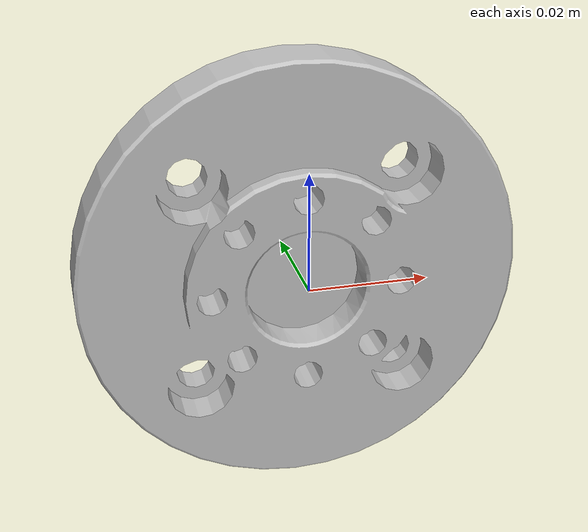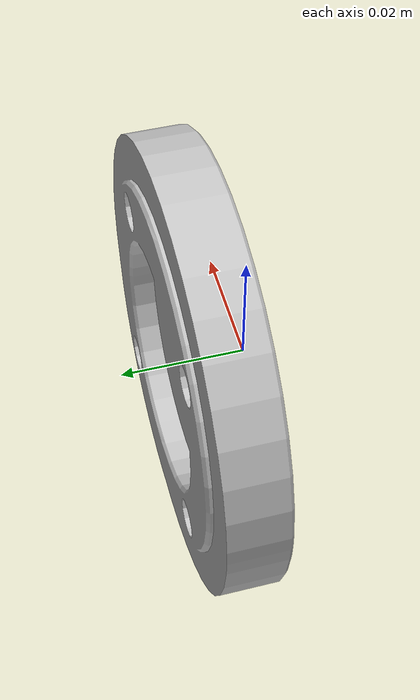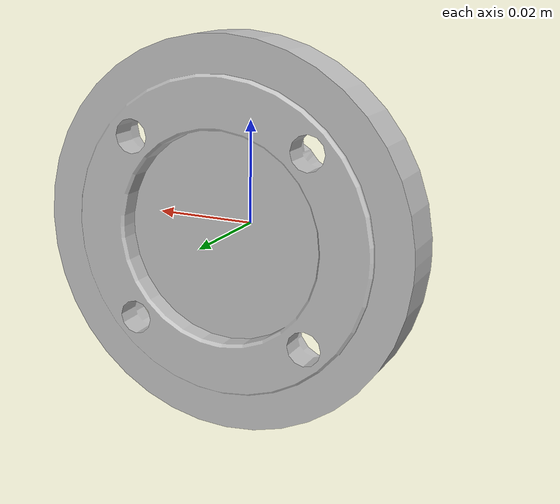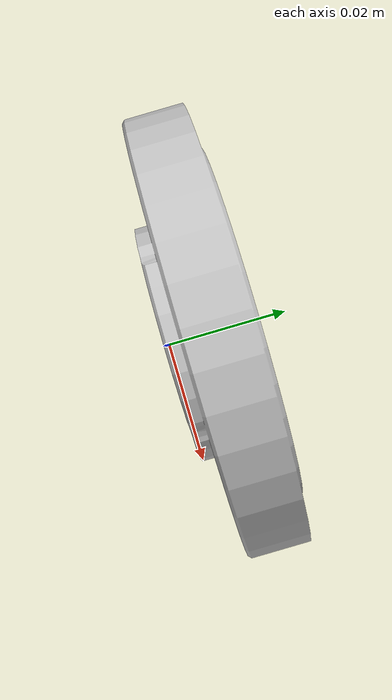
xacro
<?xml version="1.0" encoding="utf-8"?>
<robot
  name="ee"
  xmlns:xacro="http://www.ros.org/wiki/xacro">
  <link
    name="link_coupling3">
    <inertial>
      <origin
        xyz="-2.13510948500582E-07 -1.82970595220083E-06 -0.00768363431196126"
        rpy="0 0 0" />
      <mass
        value="0.0384214421870518" />
      <inertia
        ixx="1.44308944749129E-05"
        ixy="1.10001208358471E-10"
        ixz="6.16955726898917E-11"
        iyy="1.44318430502768E-05"
        iyz="5.28407477246946E-10"
        izz="2.80517055222733E-05" />
    </inertial>
    <visual>
      <origin
        xyz="0 0 0"
        rpy="0 0 0" />
      <geometry>
        <mesh
          filename="package://system_urdf/meshes/roller_probe_pieces/coupling3.STL" />
      </geometry>
      <material
        name="">
        <color
          rgba="0.749019607843137 0.749019607843137 0.749019607843137 1" />
      </material>
    </visual>
    <collision>
      <origin
        xyz="0 0 0"
        rpy="0 0 0" />
      <geometry>
        <mesh
          filename="package://system_urdf/meshes/roller_probe_pieces/coupling3.STL" />
      </geometry>
    </collision>
  </link>
</robot>
